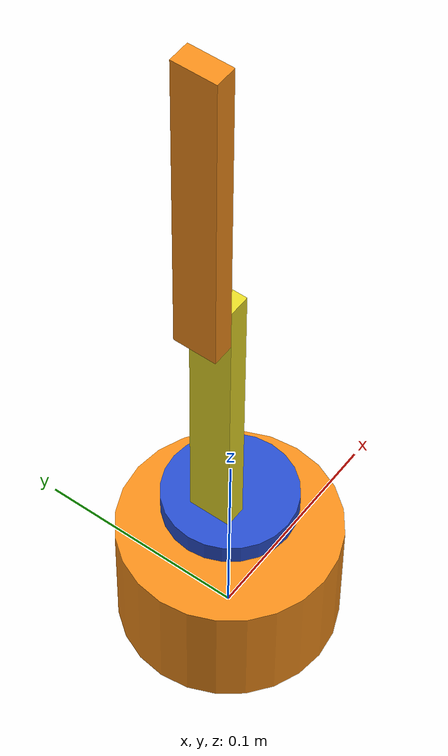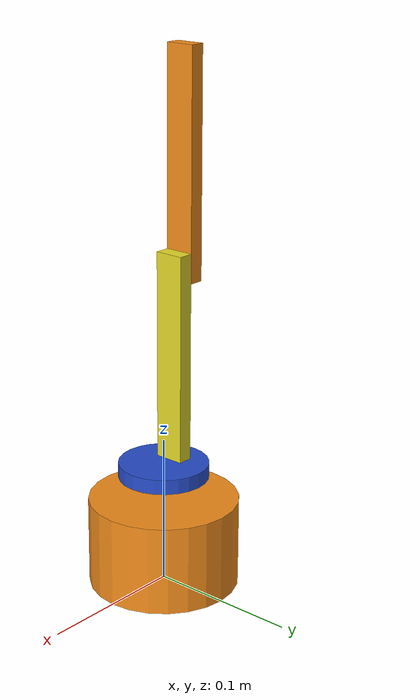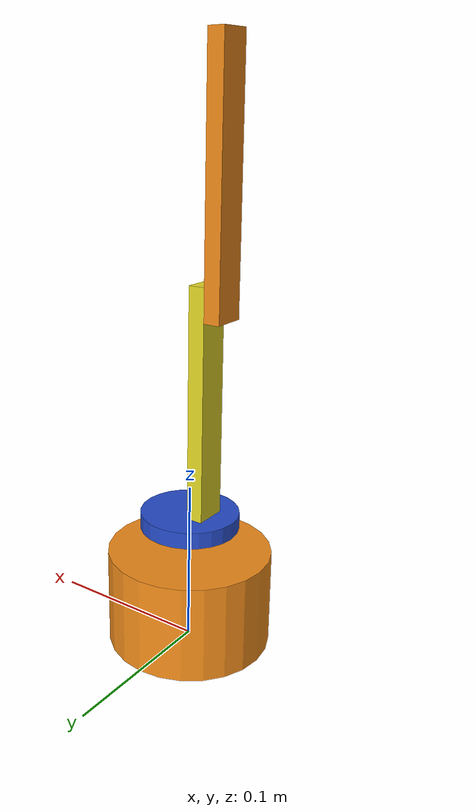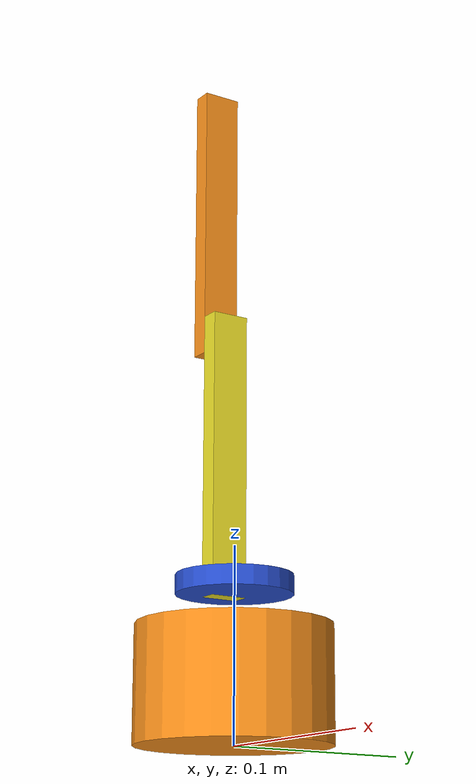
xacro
<?xml version="1.0"?>
<!-- Revolute-Revolute Manipulator -->
<!--
Copied and modified from ROS1 example -
https://github.com/ros-simulation/gazebo_ros_demos/blob/kinetic-devel/rrbot_description/urdf/rrbot.xacro
-->
<robot xmlns:xacro="http://www.ros.org/wiki/xacro" name="2dof_robot">
  <xacro:arg name="prefix" default="" />

  <!-- Import RRBot macro -->
  <xacro:include filename="$(find ros2_control_demo_example_1)/urdf/rrbot_description.urdf.xacro" />

  <!-- Import Rviz colors -->
  <xacro:include filename="$(find ros2_control_demo_example_1)/urdf/rrbot.materials.xacro" />

  <!-- Import RRBot ros2_control description -->
  <xacro:include filename="$(find ros2_control_demo_example_1)/ros2_control/rrbot.serial.ros2_control.xacro" />

  <!-- Used for fixing robot -->
  <link name="world"/>

  <xacro:rrbot parent="world" prefix="$(arg prefix)">
    <origin xyz="0 0 0" rpy="0 0 0" />
  </xacro:rrbot>

  <xacro:rrbot_ros2_control
    name="RRBot" prefix="$(arg prefix)" />

</robot>

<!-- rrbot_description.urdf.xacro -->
<robot xmlns:xacro="http://www.ros.org/wiki/xacro">

  <xacro:macro name="rrbot" params="parent prefix *origin">

  <!-- Constants -->
  <xacro:property name="mass" value="1"/>
  <xacro:property name="width" value="0.01"/>
  <xacro:property name="length" value="0.02"/>
  <xacro:property name="baselink_diameter" value="0.10"/>
  <xacro:property name="rotator_diameter" value="0.06"/>
  <xacro:property name="height_base" value="0.06"/>
  <xacro:property name="height1" value="0.03"/>
  <xacro:property name="height2" value="0.15"/>
  <xacro:property name="height3" value="0.15"/>
  <xacro:property name="axel_offset" value="0.01"/>
  <xacro:property name="shaft_offset" value="0.005"/>

 <!-- Base Joint -->
  <joint name="${prefix}base_joint" type="fixed">
    <xacro:insert_block name="origin" />
    <parent link="${parent}"/>
    <child link="${prefix}base_link" />
  </joint>

  <!-- Base Link -->
  <link name="${prefix}base_link">
    <collision>
      <origin xyz="0 0 ${height_base/2}" rpy="0 0 0"/>
      <geometry>
        <cylinder radius="${baselink_diameter/2}" length="${height_base}"/>
      </geometry>
    </collision>

    <visual>
      <origin xyz="0 0 ${height_base/2}" rpy="0 0 0"/>
      <geometry>
        <cylinder radius="${baselink_diameter/2}" length="${height_base}"/>
      </geometry>
      <material name="orange"/>
    </visual>

    <inertial>
      <origin xyz="0 0 ${height_base/2}" rpy="0 0 0"/>
      <mass value="${mass}"/>
      <inertia
        ixx="${mass * (3 * pow(baselink_diameter/2, 2) + pow(height_base, 2)) / 12.0}"
        iyy="${mass * (3 * pow(baselink_diameter/2, 2) + pow(height_base, 2)) / 12.0}"
        izz="${mass * pow(baselink_diameter/2, 2) / 2.0}"
        ixy="0.0" ixz="0.0" iyz="0.0"/>
    </inertial>
  </link>

  <!-- Joint1-->
  <joint name="${prefix}joint1" type="revolute">
    <origin xyz="0 0 ${height_base + shaft_offset}" rpy="0 0 1.5708"/>
    <parent link="${prefix}base_link"/>
    <child link="${prefix}link1"/>
    <axis xyz="0 0 1"/>
    <limit lower="${-1.75}" upper="${1.75}" effort="1.0" velocity="1.0"/>
  </joint>

    <!-- Link1 -->
  <link name="${prefix}link1">
    <collision>
      <origin xyz="0 0 ${height1/2}" rpy="0 0 0"/>
      <geometry>
        <cylinder radius="${rotator_diameter/2}" length="0.01"/>
      </geometry>
    </collision>
    <visual>
      <origin xyz="0 0 ${height1/2}" rpy="0 0 0"/>
      <geometry>
        <cylinder radius="${rotator_diameter/2}" length="0.01"/>
      </geometry>
      <material name="blue"/>
    </visual>

    <inertial>
      <origin xyz="0 0 ${height1/2}" rpy="0 0 0"/>
      <mass value="${mass}"/>
      <inertia
        ixx="${mass * (3 * pow(rotator_diameter/2, 2) + pow(height_base, 2)) / 12.0}"
        iyy="${mass * (3 * pow(rotator_diameter/2, 2) + pow(height_base, 2)) / 12.0}"
        izz="${mass * pow(rotator_diameter/2, 2) / 2.0}"
        ixy="0.0" ixz="0.0" iyz="0.0"/>
    </inertial>
  </link>

  <!-- Joint2-->
  <joint name="${prefix}joint2" type="revolute">
    <origin xyz="0 ${width} ${0.01 + axel_offset}"/>
    <parent link="${prefix}link1"/>
    <child link="${prefix}link2"/>
    <axis xyz="0 1 0"/>
    <dynamics damping="0.7"/>
    <limit lower="${-1.75}" upper="${1.75}" effort="1.0" velocity="1.0"/>
  </joint>

  <!-- Link2 -->
  <link name="${prefix}link2">
    <collision>
      <origin xyz="0 0 ${height2/2 - axel_offset}" rpy="0 0 0"/>
      <geometry>
        <box size="${length} ${width} ${height2}"/>
      </geometry>
    </collision>

    <visual>
      <origin xyz="0 0 ${height2/2 - axel_offset}" rpy="0 0 0"/>
      <geometry>
        <box size="${length} ${width} ${height2}"/>
      </geometry>
      <material name="yellow"/>
    </visual>

    <inertial>
      <origin xyz="0 0 ${height2/2 - axel_offset}" rpy="0 0 0"/>
      <mass value="${mass}"/>
      <inertia
        ixx="${mass / 12.0 * (width*width + height2*height2)}" ixy="0.0" ixz="0.0"
        iyy="${mass / 12.0 * (height2*height2 + width*width)}" iyz="0.0"
        izz="${mass / 12.0 * (width*width + width*width)}"/>
    </inertial>
  </link>

  <!-- Joint3 -->
  <joint name="${prefix}joint3" type="revolute">
    <parent link="${prefix}link2"/>
    <child link="${prefix}link3"/>
    <origin xyz="0 ${width} ${height2 - axel_offset*2}" rpy="0 0 0"/>
    <axis xyz="0 1 0"/>
    <dynamics damping="0.7"/>
    <limit lower="${-1.75}" upper="${1.75}" effort="1.0" velocity="1.0"/>
  </joint>

  <!-- Link3 -->
  <link name="${prefix}link3">
    <collision>
      <origin xyz="0 0 ${height3/2 - axel_offset}" rpy="0 0 0"/>
      <geometry>
        <box size="${length} ${width} ${height3}"/>
      </geometry>
    </collision>
    <visual>
      <origin xyz="0 0 ${height3/2 - axel_offset}" rpy="0 0 0"/>
      <geometry>
        <box size="${length} ${width} ${height3}"/>
      </geometry>
      <material name="orange"/>
    </visual>

    <inertial>
      <origin xyz="0 0 ${height3/2 - axel_offset}" rpy="0 0 0"/>
      <mass value="${mass}"/>
      <inertia
        ixx="${mass / 12.0 * (width*width + height3*height3)}" ixy="0.0" ixz="0.0"
        iyy="${mass / 12.0 * (height3*height3 + width*width)}" iyz="0.0"
        izz="${mass / 12.0 * (width*width + width*width)}"/>
    </inertial>
  </link>

  <!-- Joint4 -->
  <joint name="${prefix}joint4" type="fixed">
    <origin xyz="0 0 ${height3 - axel_offset}"/>
    <parent link="${prefix}link3"/>
    <child link="${prefix}link4" />
  </joint>

    <!-- Link4 -->
  <link name="${prefix}link4">
  </link>

  </xacro:macro>

</robot>
